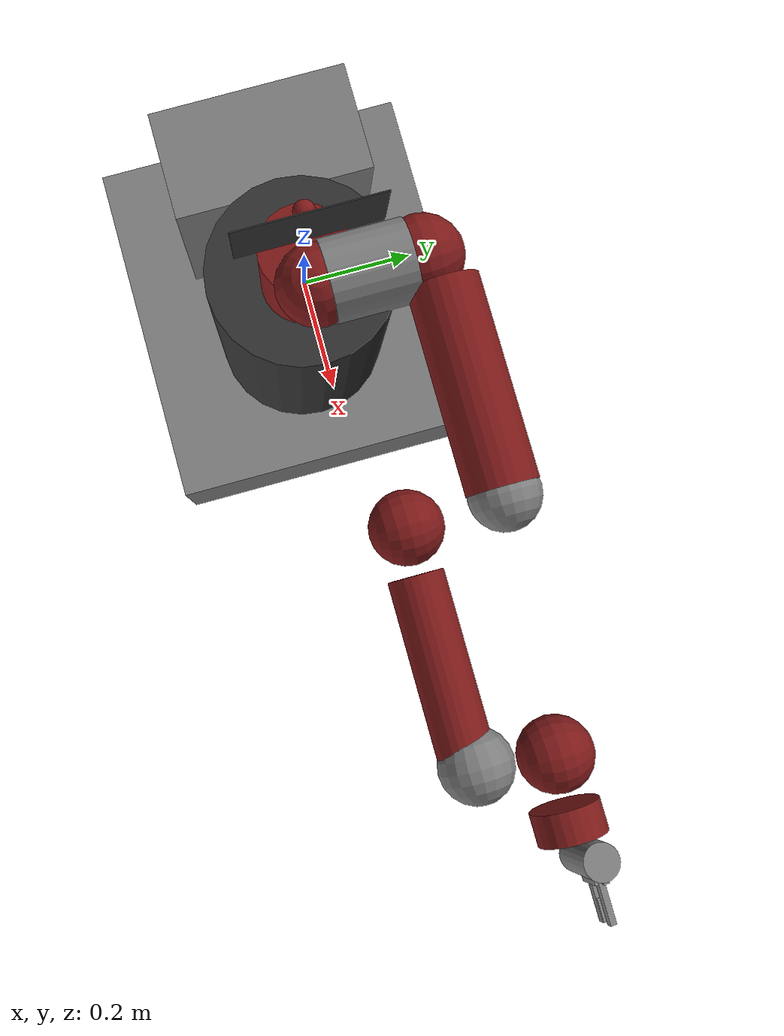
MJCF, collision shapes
<mujoco model="sawyer">
	<actuator>
		<!-- Mujoco does not have velocity limit in actuator :( -->
		<position ctrllimited="true" ctrlrange="-3.0503 3.0503" joint="right_j0" kp="50" name="right_j0"/>
		<position ctrllimited="true" ctrlrange="-3.8095 2.2736" joint="right_j1" kp="30" name="right_j1" forcelimited="true" forcerange="-8000 8000"/>
		<position ctrllimited="true" ctrlrange="-3.0426 3.0426" joint="right_j2" kp="20" name="right_j2" forcelimited="true" forcerange="-500 500"/>
		<position ctrllimited="true" ctrlrange="-3.0439 3.0439" joint="right_j3" kp="15" name="right_j3" forcelimited="true" forcerange="-500 500"/>
		<position ctrllimited="true" ctrlrange="-2.9761 2.9761" joint="right_j4" kp="10" name="right_j4" forcelimited="true" forcerange="-8 8"/>
		<position ctrllimited="true" ctrlrange="-2.9761 2.9761" joint="right_j5" kp="5" name="right_j5" forcelimited="true" forcerange="-8 8"/>
		<position ctrllimited="true" ctrlrange="-4.7124 4.7124" joint="right_j6" kp="2" name="right_j6" forcelimited="true" forcerange="-8 8"/>
        <velocity ctrllimited="true" ctrlrange="-1.0 1.0" joint="right_j0" kv="8.0" name="vel_right_j0"/>
        <velocity ctrllimited="true" ctrlrange="-1.0 1.0" joint="right_j1" kv="7.0" name="vel_right_j1"/>
        <velocity ctrllimited="true" ctrlrange="-1.0 1.0" joint="right_j2" kv="6.0" name="vel_right_j2"/>
        <velocity ctrllimited="true" ctrlrange="-1.0 1.0" joint="right_j3" kv="4.0" name="vel_right_j3"/>
        <velocity ctrllimited="true" ctrlrange="-1.0 1.0" joint="right_j4" kv="2.0" name="vel_right_j4"/>
        <velocity ctrllimited="true" ctrlrange="-1.0 1.0" joint="right_j5" kv="0.5" name="vel_right_j5"/>
        <velocity ctrllimited="true" ctrlrange="-1.0 1.0" joint="right_j6" kv="0.1" name="vel_right_j6"/>
        <position ctrllimited="true" ctrlrange="0 0.020833" joint="r_gripper_r_finger_joint" kp="10000" name="r_gripper_r_finger_joint" forcelimited="true" forcerange="-20 20"/>
		<position ctrllimited="true" ctrlrange="-0.020833 0" joint="r_gripper_l_finger_joint" kp="10000" name="r_gripper_l_finger_joint" forcelimited="true" forcerange="-20 20"/>
	</actuator>
	<asset>
		<mesh file="pedestal.stl" name="pedestal"/>
		<mesh file="base.stl" name="base"/>
		<mesh file="l0.stl" name="l0"/>
		<mesh file="head.stl" name="head"/>
		<mesh file="l1.stl" name="l1"/>
		<mesh file="l2.stl" name="l2"/>
		<mesh file="l3.stl" name="l3"/>
		<mesh file="l4.stl" name="l4"/>
		<mesh file="l5.stl" name="l5"/>
		<mesh file="l6.stl" name="l6"/>
		<mesh name="electric_gripper_base" file="electric_gripper/electric_gripper_base.STL" />
        <mesh name="standard_narrow" file="electric_gripper/fingers/standard_narrow.STL" />
        <mesh name="half_round_tip" file="electric_gripper/fingers/half_round_tip.STL" />
	</asset>
	<worldbody>
		<body name="base" pos="0 0 0">
			<inertial diaginertia="0 0 0" mass="0" pos="0 0 0"/>
			<body name="controller_box" pos="0 0 0">
				<inertial diaginertia="1.71363 1.27988 0.809981" mass="46.64" pos="-0.325 0 -0.38"/>
				<geom pos="-0.325 0 -0.38" size="0.11 0.2 0.265" type="box"/>
			</body>
			<body name="pedestal_feet" pos="0 0 0">
				<inertial diaginertia="8.16095 9.59375 15.0785" mass="167.09" pos="-0.1225 0 -0.758"/>
				<geom pos="-0.1225 0 -0.758" size="0.385 0.35 0.155" type="box"/>
			</body>
			<body name="torso" pos="0 0 0">
				<inertial diaginertia="1e-08 1e-08 1e-08" mass="0.0001" pos="0 0 0"/>
				<geom conaffinity="0" contype="0" group="1" rgba="0.2 0.2 0.2 1" size="0.05 0.05 0.05" type="box"/>
			</body>
			<body name="pedestal" pos="0 0 0">
				<inertial diaginertia="6.0869 5.81635 4.20915" mass="60.864" pos="0 0 0" quat="0.659267 -0.259505 -0.260945 0.655692"/>
				<geom conaffinity="0" contype="0" group="1" mesh="pedestal" pos="0.26 0.345 -0.91488" quat="0.5 0.5 -0.5 -0.5" rgba="0.2 0.2 0.2 1" type="mesh"/>
				<geom pos="-0.02 0 -0.29" rgba="0.2 0.2 0.2 1" size="0.18 0.31" type="cylinder"/>
			</body>
			<body name="right_arm_base_link" pos="0 0 0">
				<inertial diaginertia="0.00740351 0.00681776 0.00672942" mass="2.0687" pos="-0.0006241 -2.8025e-05 0.065404" quat="-0.209285 0.674441 0.227335 0.670558"/>
				<geom conaffinity="0" contype="0" group="1" mesh="base" rgba="0.5 0.1 0.1 1" type="mesh"/>
				<geom pos="0 0 0.12" rgba="0.5 0.1 0.1 1" size="0.08 0.12" type="cylinder"/>
				<body name="right_l0" pos="0 0 0.08">
					<inertial diaginertia="0.0651588 0.0510944 0.0186218" mass="5.3213" pos="0.024366 0.010969 0.14363" quat="0.894823 0.00899958 -0.170275 0.412573"/>
					<joint axis="0 0 1" limited="true" name="right_j0" pos="0 0 0" range="-3.0503 3.0503"/>
					<geom conaffinity="0" contype="0" group="1" mesh="l0" rgba="0.5 0.1 0.1 1" type="mesh"/>
					<geom pos="0.08 0 0.23" rgba="0.5 0.1 0.1 1" size="0.07"/>
					<body name="head" pos="0 0 0.2965">
						<inertial diaginertia="0.0118334 0.00827089 0.00496574" mass="1.5795" pos="0.0053207 -2.6549e-05 0.1021" quat="0.999993 7.08405e-05 -0.00359857 -0.000626247"/>
						<joint axis="0 0 1" limited="true" name="head_pan" pos="0 0 0" range="-5.0952 0.9064"/>
						<geom conaffinity="0" contype="0" group="1" mesh="head" rgba="0.5 0.1 0.1 1" type="mesh"/>
						<geom pos="0 0 0.08" rgba="0.5 0.1 0.1 1" size="0.018"/>
						<body name="screen" pos="0.03 0 0.105" quat="0.5 0.5 0.5 0.5">
							<inertial diaginertia="1e-08 1e-08 1e-08" mass="0.0001" pos="0 0 0"/>
							<geom conaffinity="0" contype="0" group="1" rgba="0.2 0.2 0.2 1" size="0.12 0.07 0.001" type="box"/>
							<geom rgba="0.2 0.2 0.2 1" size="0.001"/>
						</body>
						<body name="head_camera" pos="0.0228027 0 0.216572" quat="0.342813 -0.618449 0.618449 -0.342813">
							<inertial diaginertia="0 0 0" mass="0" pos="0.0228027 0 0.216572" quat="0.342813 -0.618449 0.618449 -0.342813"/>
						</body>
					</body>
					<body name="right_torso_itb" pos="-0.055 0 0.22" quat="0.707107 0 -0.707107 0">
						<inertial diaginertia="1e-08 1e-08 1e-08" mass="0.0001" pos="0 0 0"/>
					</body>
					<body name="right_l1" pos="0.081 0.05 0.237" quat="0.5 -0.5 0.5 0.5">
						<inertial diaginertia="0.0224339 0.0221624 0.0097097" mass="4.505" pos="-0.0030849 -0.026811 0.092521" quat="0.424888 0.891987 0.132364 -0.0794296"/>
						<joint axis="0 0 1" limited="true" name="right_j1" pos="0 0 0" range="-3.8095 2.2736"/>
						<geom conaffinity="0" contype="0" group="1" mesh="l1" rgba="0.5 0.1 0.1 1" type="mesh"/>
						<geom pos="0 0 0.1225" rgba="0.5 0.1 0.1 1" size="0.07"/>
						<body name="right_l2" pos="0 -0.14 0.1425" quat="0.707107 0.707107 0 0">
							<inertial diaginertia="0.0257928 0.025506 0.00292515" mass="1.745" pos="-0.00016044 -0.014967 0.13582" quat="0.707831 -0.0524761 0.0516007 0.702537"/>
							<joint axis="0 0 1" limited="true" name="right_j2" pos="0 0 0" range="-3.0426 3.0426"/>
							<geom conaffinity="0" contype="0" group="1" mesh="l2" rgba="0.5 0.1 0.1 1" type="mesh"/>
							<geom pos="0 0 0.08" rgba="0.5 0.1 0.1 1" size="0.06 0.17" type="cylinder"/>
							<body name="right_l3" pos="0 -0.042 0.26" quat="0.707107 -0.707107 0 0">
								<inertial diaginertia="0.0102404 0.0096997 0.00369622" mass="2.5097" pos="-0.0048135 -0.0281 -0.084154" quat="0.902999 0.385391 -0.0880901 0.168247"/>
								<joint axis="0 0 1" limited="true" name="right_j3" pos="0 0 0" range="-3.0439 3.0439"/>
								<geom conaffinity="0" contype="0" group="1" mesh="l3" rgba="0.5 0.1 0.1 1" type="mesh"/>
								<geom pos="0 -0.01 -0.12" rgba="0.5 0.1 0.1 1" size="0.06"/>
								<body name="right_l4" pos="0 -0.125 -0.1265" quat="0.707107 0.707107 0 0">
									<inertial diaginertia="0.0136549 0.0135493 0.00127353" mass="1.1136" pos="-0.0018844 0.0069001 0.1341" quat="0.803612 0.031257 -0.0298334 0.593582"/>
									<joint axis="0 0 1" limited="true" name="right_j4" pos="0 0 0" range="-2.9761 2.9761"/>
									<geom conaffinity="0" contype="0" group="1" mesh="l4" rgba="0.5 0.1 0.1 1" type="mesh"/>
									<geom pos="0 0 0.11" rgba="0.5 0.1 0.1 1" size="0.045 0.15" type="cylinder"/>
									<body name="right_arm_itb" pos="-0.055 0 0.075" quat="0.707107 0 -0.707107 0">
										<inertial diaginertia="1e-08 1e-08 1e-08" mass="0.0001" pos="0 0 0"/>
									</body>
									<body name="right_l5" pos="0 0.031 0.275" quat="0.707107 -0.707107 0 0">
										<inertial diaginertia="0.00474131 0.00422857 0.00190672" mass="1.5625" pos="0.0061133 -0.023697 0.076416" quat="0.404076 0.9135 0.0473125 0.00158335"/>
										<joint axis="0 0 1" limited="true" name="right_j5" pos="0 0 0" range="-2.9761 2.9761" damping="0.2"/>
										<geom conaffinity="0" contype="0" group="1" mesh="l5" rgba="0.5 0.1 0.1 1" type="mesh"/>
										<geom pos="0 0 0.1" rgba="0.5 0.1 0.1 1" size="0.06"/>
										<body name="right_hand_camera" pos="0.039552 -0.033 0.0695" quat="0.707107 0 0.707107 0">
											<inertial diaginertia="0 0 0" mass="0" pos="0.039552 -0.033 0.0695" quat="0.707107 0 0.707107 0"/>
										</body>
										<body name="right_wrist" pos="0 0 0.10541" quat="0.707107 0.707107 0 0">
											<inertial diaginertia="0 0 0" mass="0" pos="0 0 0.10541" quat="0.707107 0.707107 0 0"/>
										</body>
										<body name="right_l6" pos="0 -0.11 0.1053" quat="0.0616248 0.06163 -0.704416 0.704416">
											<inertial diaginertia="0.000360258 0.000311068 0.000214974" mass="0.3292" pos="-8.0726e-06 0.0085838 -0.0049566" quat="0.479044 0.515636 -0.513069 0.491322"/>
											<joint axis="0 0 1" limited="true" name="right_j6" pos="0 0 0" range="-4.7124 4.7124" damping="0.1"/>
											<geom conaffinity="0" contype="0" group="1" mesh="l6" rgba="0.5 0.1 0.1 1" type="mesh"/>
											<geom pos="0 0.015 -0.01" rgba="0.5 0.1 0.1 1" size="0.055 0.025" type="cylinder"/>
											<body name="right_hand" pos="0 0 0.0245" quat="0.707105 0 0 0.707108">
	                                            <inertial pos="1e-08 1e-08 1e-08" quat="0.820473 0.339851 -0.17592 0.424708" mass="1e-08" diaginertia="1e-08 1e-08 1e-08" />
	                                            <geom size="1e-08 5e-09" type="cylinder" />
	                                            <body name="right_gripper_base" pos="0 0 0.025">
	                                                <inertial pos="0 0 0" quat="-0.5 0.5 0.5 0.5" mass="0.3" diaginertia="3e-08 2e-08 2e-08" />
	                                                <geom quat="0 0 0.707107 0.707107" type="mesh" contype="0" conaffinity="0" group="1" mesh="electric_gripper_base" />
	                                                <geom size="0.029 0.05" quat="0 0 0.707107 0.707107" type="cylinder" />
	                                                <body name="right_gripper" pos="0 0 0.095">
	                                                    <inertial pos="0 0 0" mass="0.0001" diaginertia="0 0 0" />
	                                                </body>
	                                                <body name="r_gripper_l_finger" pos="0 -0.0015 0.02">
	                                                    <inertial pos="0 0 0" quat="0 0 0 -1" mass="0.02" diaginertia="0.01 0.01 0.01" />
	                                                    <joint name="r_gripper_l_finger_joint" pos="0 0 0" axis="0 1 0" type="slide" limited="true" range="0 0.020833" damping="0.7"/>
	                                                    <geom quat="0 0 0 -1" type="mesh" contype="0" conaffinity="0" group="1" mesh="standard_narrow" />
	                                                    <geom size="0.005 0.00675 0.0375" pos="0 0.01725 0.04" quat="0 0 0 -1" type="box" />
	                                                    <geom size="0.005 0.025 0.0085" pos="-0.005 -0.003 0.0083" quat="0 0 0 -1" type="box" />
	                                                    <body name="r_gripper_l_finger_tip" pos="0 0.01725 0.075">
	                                                        <inertial pos="0 0 0" quat="0 0 0 1" mass="0.01" diaginertia="0.01 0.01 0.01" />
	                                                        <geom quat="0 0 0 1" type="mesh" contype="0" conaffinity="0" group="1" mesh="half_round_tip" />
	                                                        <geom size="0.004 0.004 0.0185" pos="0 -0.0045 -0.015" quat="0 0 0 1" type="box" />
	                                                    </body>
	                                                </body>
	                                                <body name="r_gripper_r_finger" pos="0 0.0015 0.02">
	                                                    <inertial pos="0 0 0" mass="0.02" diaginertia="0.01 0.01 0.01" />
	                                                    <joint name="r_gripper_r_finger_joint" pos="0 0 0" axis="0 1 0" type="slide" limited="true" range="-0.020833 0" damping="0.7"/>
	                                                    <geom type="mesh" contype="0" conaffinity="0" group="1" mesh="standard_narrow" />
	                                                    <geom size="0.005 0.00675 0.0375" pos="0 -0.01725 0.04" type="box" />
	                                                    <geom size="0.005 0.025 0.0085" pos="0.005 0.003 0.0083" type="box" />
	                                                    <body name="r_gripper_r_finger_tip" pos="0 -0.01725 0.075">
	                                                        <inertial pos="0 0 0" mass="0.01" diaginertia="0.01 0.01 0.01" />
	                                                        <geom type="mesh" contype="0" conaffinity="0" group="1" mesh="half_round_tip" />
	                                                        <geom size="0.004 0.004 0.0185" pos="0 0.0045 -0.015" type="box" />
	                                                    </body>
	                                                </body>
	                                            </body>
                                        	</body>
										</body>
									</body>
									<body name="right_l4_2" pos="0 0 0">
										<inertial diaginertia="1e-08 1e-08 1e-08" mass="1e-08" pos="1e-08 1e-08 1e-08" quat="0.820473 0.339851 -0.17592 0.424708"/>
										<geom pos="0 0.01 0.26" size="0.06"/>
									</body>
								</body>
							</body>
							<body name="right_l2_2" pos="0 0 0">
								<inertial diaginertia="1e-08 1e-08 1e-08" mass="1e-08" pos="1e-08 1e-08 1e-08" quat="0.820473 0.339851 -0.17592 0.424708"/>
								<geom pos="0 0 0.26" size="0.06"/>
							</body>
						</body>
						<body name="right_l1_2" pos="0 0 0">
							<inertial diaginertia="1e-08 1e-08 1e-08" mass="1e-08" pos="1e-08 1e-08 1e-08" quat="0.820473 0.339851 -0.17592 0.424708"/>
							<geom pos="0 0 0.035" size="0.07 0.07" type="cylinder"/>
						</body>
					</body>
				</body>
			</body>
		</body>
	</worldbody>
</mujoco>
